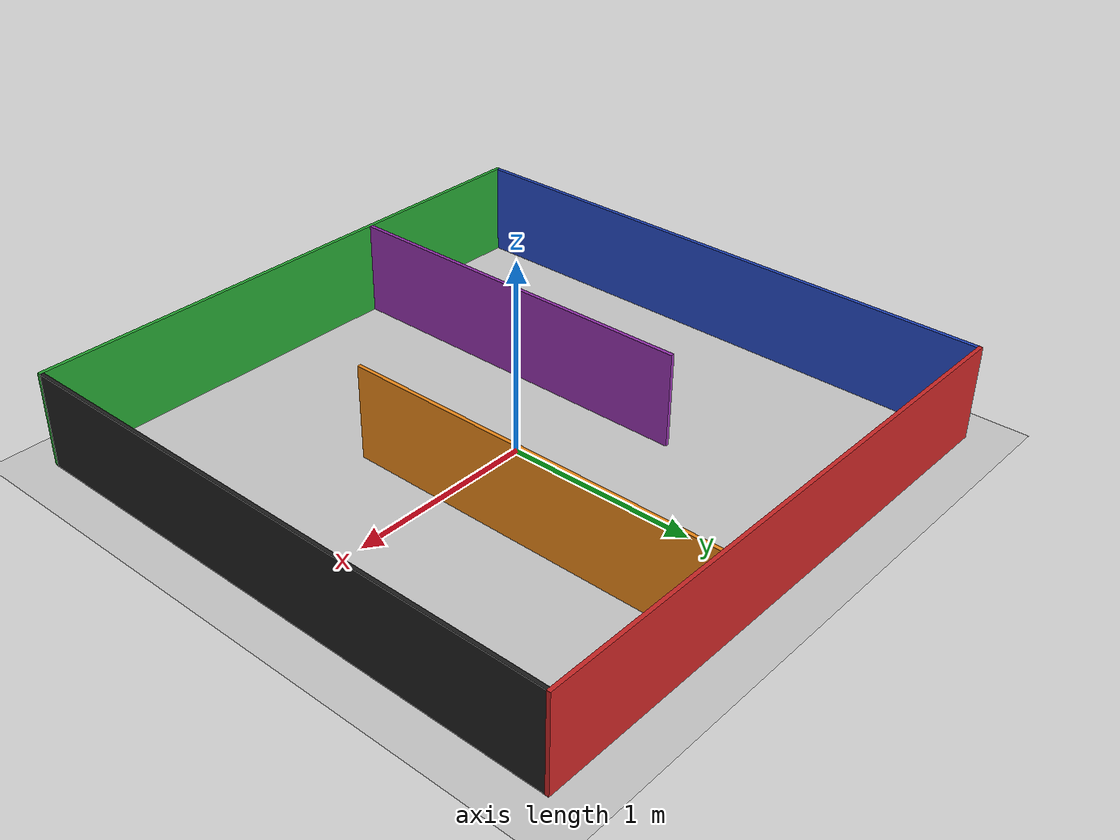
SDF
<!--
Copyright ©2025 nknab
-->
<?xml version="1.0" ?>

<sdf version="1.6">
	<world name="wall_arena">
		<physics name="1ms" type="ignored">
			<max_step_size>0.001</max_step_size>
			<real_time_factor>1.0</real_time_factor>
		</physics>
		<plugin filename="gz-sim-physics-system" name="gz::sim::systems::Physics"/>
		<plugin filename="gz-sim-user-commands-system" name="gz::sim::systems::UserCommands"/>
		<plugin filename="gz-sim-scene-broadcaster-system" name="gz::sim::systems::SceneBroadcaster"/>
		<plugin filename="gz-sim-contact-system" name="gz::sim::systems::Contact"/>
		<plugin filename="gz-sim-sensors-system" name="gz::sim::systems::Sensors">
			<render_engine>ogre2</render_engine>
		</plugin>
		<plugin filename="gz-sim-imu-system" name="gz::sim::systems::Imu"/>
		<gravity>0 0 -9.81</gravity>
		<magnetic_field>5.5645e-06 2.28758e-05 -4.23884e-05</magnetic_field>
		<include>
			<uri>model://models/sun</uri>
		</include>
		<include>
			<uri>model://models/ground_plane</uri>
		</include>

		<model name="walls">
			<static>true</static>
			<link name="top_wall">
				<pose>0 1.51 0.25 0 0 0</pose>
				<visual name="top_wall_visual">
					<geometry>
						<box>
							<size>3.04 0.02 0.5</size>
						</box>
					</geometry>
					<material>
						<script>
							<uri>file://media/materials/scripts/gazebo.material</uri>
							<name>Gazebo/Red</name>
						</script>
					</material>
				</visual>
				<collision name="top_wall_collision">
					<geometry>
						<box>
							<size>3.04 0.02 0.5</size>
						</box>
					</geometry>
				</collision>
			</link>
			<link name="bottom_wall">
				<pose>0 -1.51 0.25 0 0 0</pose>
				<visual name="bottom_wall_visual">
					<geometry>
						<box>
							<size>3.04 0.02 0.5</size>
						</box>
					</geometry>
					<material>
						<script>
							<uri>file://media/materials/scripts/gazebo.material</uri>
							<name>Gazebo/Green</name>
						</script>
					</material>
				</visual>
				<collision name="bottom_wall_collision">
					<geometry>
						<box>
							<size>3.04 0.02 0.5</size>
						</box>
					</geometry>
				</collision>
			</link>
			<link name="left_wall">
				<pose>-1.51 0 0.25 0 0 0</pose>
				<visual name="left_wall_visual">
					<geometry>
						<box>
							<size>0.02 3.0 0.5</size>
						</box>
					</geometry>
					<material>
						<script>
							<uri>file://media/materials/scripts/gazebo.material</uri>
							<name>Gazebo/Blue</name>
						</script>
					</material>
				</visual>
				<collision name="left_wall_collision">
					<geometry>
						<box>
							<size>0.02 3.0 0.5</size>
						</box>
					</geometry>
				</collision>
			</link>
			<link name="right_wall">
				<pose>1.51 0 0.25 0 0 0</pose>
				<visual name="right_wall_visual">
					<geometry>
						<box>
							<size>0.02 3.0 0.5</size>
						</box>
					</geometry>
					<material>
						<script>
							<uri>file://media/materials/scripts/gazebo.material</uri>
							<name>Gazebo/Black</name>
						</script>
					</material>
				</visual>
				<collision name="right_wall_collision">
					<geometry>
						<box>
							<size>0.02 3.0 0.5</size>
						</box>
					</geometry>
				</collision>
			</link>
			<link name="middle_left_wall">
				<pose>-0.51 -0.5 0.25 0 0 0</pose>
				<visual name="middle_left_wall_visual">
					<geometry>
						<box>
							<size>0.02 2.0 0.5</size>
						</box>
					</geometry>
					<material>
						<script>
							<uri>file://media/materials/scripts/gazebo.material</uri>
							<name>Gazebo/Purple</name>
						</script>
					</material>
				</visual>
				<collision name="middle_left_wall_collision">
					<geometry>
						<box>
							<size>0.02 2.0 0.5</size>
						</box>
					</geometry>
				</collision>
			</link>
			<link name="middle_right_wall">
				<pose>0.51 0.5 0.25 0 0 0</pose>
				<visual name="middle_right_wall_visual">
					<geometry>
						<box>
							<size>0.02 2.0 0.5</size>
						</box>
					</geometry>
					<material>
						<script>
							<uri>file://media/materials/scripts/gazebo.material</uri>
							<name>Gazebo/Orange</name>
						</script>
					</material>
				</visual>
				<collision name="middle_right_wall_collision">
					<geometry>
						<box>
							<size>0.02 2.0 0.5</size>
						</box>
					</geometry>
				</collision>
			</link>
		</model>
	</world>
</sdf>
